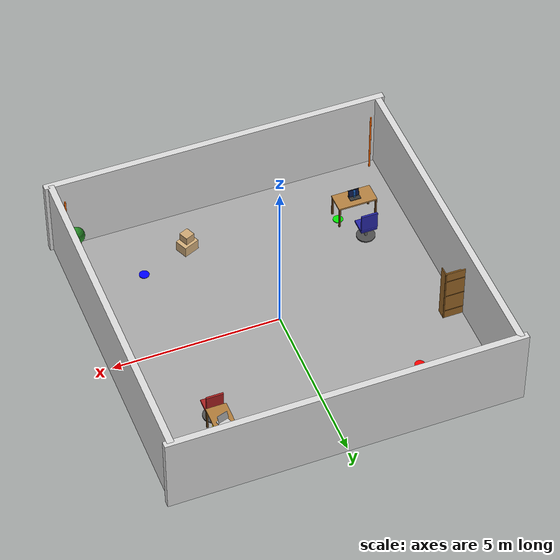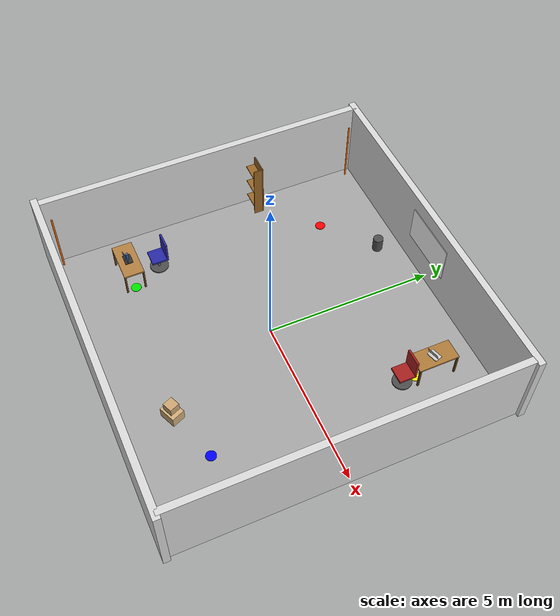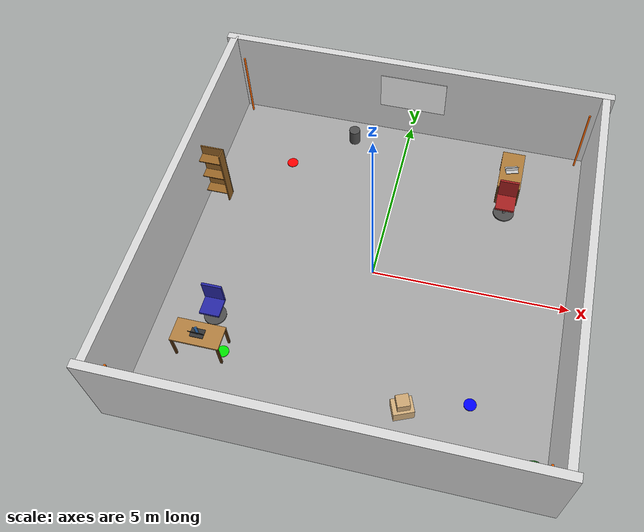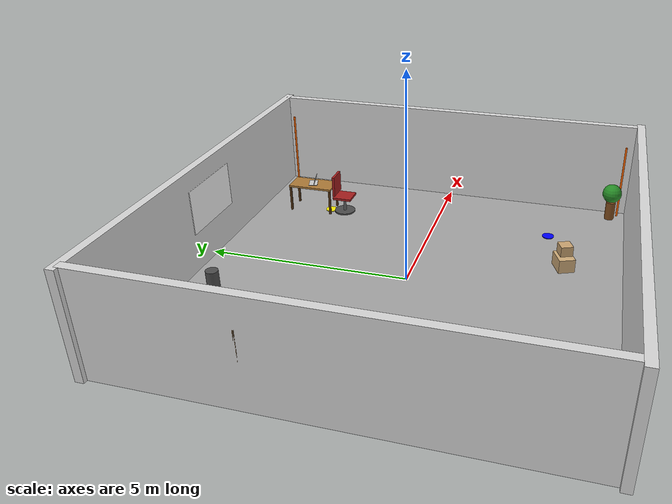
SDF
<?xml version="1.0" ?>
<sdf version="1.6">
  <world name="testing_world">

    <plugin filename="libignition-gazebo-physics-system.so" name="ignition::gazebo::systems::Physics"/>
    <plugin filename="libignition-gazebo-user-commands-system.so" name="ignition::gazebo::systems::UserCommands"/>
    <plugin filename="libignition-gazebo-scene-broadcaster-system.so" name="ignition::gazebo::systems::SceneBroadcaster"/>
    <plugin filename="libignition-gazebo-imu-system.so" name="ignition::gazebo::systems::Imu"/>
    <plugin filename="libignition-gazebo-sensors-system.so" name="ignition::gazebo::systems::Sensors">
      <render_engine>ogre</render_engine>
    </plugin>

    <physics name="default_physics" default="true" type="ode">
      <max_step_size>0.004</max_step_size>
      <real_time_factor>1</real_time_factor>
      <real_time_update_rate>250</real_time_update_rate>
      <gravity>0 0 -9.81</gravity>
    </physics>

    <light name="sun" type="directional">
      <cast_shadows>true</cast_shadows>
      <pose>0 0 20 0 -0.5 0.7</pose>
      <diffuse>1.0 1.0 1.0 1</diffuse>
      <specular>0.3 0.3 0.3 1</specular>
      <direction>-0.5 0.2 -0.9</direction>
    </light>

    <light name="ambient_fill" type="directional">
      <cast_shadows>false</cast_shadows>
      <pose>0 0 10 0 0 0</pose>
      <diffuse>0.4 0.4 0.45 1</diffuse>
      <specular>0.05 0.05 0.05 1</specular>
      <direction>0 0 -1</direction>
    </light>

    <model name="floor">
      <static>true</static>
      <pose>0 0 0 0 0 0</pose>
      <link name="link">
        <collision name="col"><geometry><box><size>10 10 0.02</size></box></geometry></collision>
        <visual name="vis">
          <geometry><box><size>10 10 0.02</size></box></geometry>
          <material><ambient>0.55 0.55 0.55 1</ambient><diffuse>0.65 0.65 0.65 1</diffuse></material>
        </visual>
      </link>
    </model>

    <model name="wall_north">
      <static>true</static>
      <pose>0 5.0 1.25 0 0 0</pose>
      <link name="link">
        <collision name="col"><geometry><box><size>10.4 0.2 2.5</size></box></geometry></collision>
        <visual name="vis">
          <geometry><box><size>10.4 0.2 2.5</size></box></geometry>
          <material><ambient>0.8 0.8 0.8 1</ambient><diffuse>0.85 0.85 0.85 1</diffuse></material>
        </visual>
      </link>
    </model>

    <model name="wall_south">
      <static>true</static>
      <pose>0 -5.0 1.25 0 0 0</pose>
      <link name="link">
        <collision name="col"><geometry><box><size>10.4 0.2 2.5</size></box></geometry></collision>
        <visual name="vis">
          <geometry><box><size>10.4 0.2 2.5</size></box></geometry>
          <material><ambient>0.8 0.8 0.8 1</ambient><diffuse>0.85 0.85 0.85 1</diffuse></material>
        </visual>
      </link>
    </model>

    <model name="wall_east">
      <static>true</static>
      <pose>5.0 0 1.25 0 0 0</pose>
      <link name="link">
        <collision name="col"><geometry><box><size>0.2 10.0 2.5</size></box></geometry></collision>
        <visual name="vis">
          <geometry><box><size>0.2 10.0 2.5</size></box></geometry>
          <material><ambient>0.8 0.8 0.8 1</ambient><diffuse>0.85 0.85 0.85 1</diffuse></material>
        </visual>
      </link>
    </model>

    <model name="wall_west">
      <static>true</static>
      <pose>-5.0 0 1.25 0 0 0</pose>
      <link name="link">
        <collision name="col"><geometry><box><size>0.2 10.0 2.5</size></box></geometry></collision>
        <visual name="vis">
          <geometry><box><size>0.2 10.0 2.5</size></box></geometry>
          <material><ambient>0.8 0.8 0.8 1</ambient><diffuse>0.85 0.85 0.85 1</diffuse></material>
        </visual>
      </link>
    </model>

    <model name="desk1_top">
      <static>true</static>
      <pose>-3.5 -3.0 0.725 0 0 0</pose>
      <link name="link">
        <collision name="col"><geometry><box><size>1.2 0.6 0.05</size></box></geometry></collision>
        <visual name="vis">
          <geometry><box><size>1.2 0.6 0.05</size></box></geometry>
          <material><ambient>0.6 0.4 0.2 1</ambient><diffuse>0.7 0.5 0.25 1</diffuse></material>
        </visual>
      </link>
    </model>

    <model name="desk1_leg_fl">
      <static>true</static>
      <pose>-4.065 -3.275 0.35 0 0 0</pose>
      <link name="link">
        <collision name="col"><geometry><box><size>0.05 0.05 0.70</size></box></geometry></collision>
        <visual name="vis">
          <geometry><box><size>0.05 0.05 0.70</size></box></geometry>
          <material><ambient>0.4 0.25 0.1 1</ambient><diffuse>0.4 0.25 0.1 1</diffuse></material>
        </visual>
      </link>
    </model>

    <model name="desk1_leg_fr">
      <static>true</static>
      <pose>-2.935 -3.275 0.35 0 0 0</pose>
      <link name="link">
        <collision name="col"><geometry><box><size>0.05 0.05 0.70</size></box></geometry></collision>
        <visual name="vis">
          <geometry><box><size>0.05 0.05 0.70</size></box></geometry>
          <material><ambient>0.4 0.25 0.1 1</ambient><diffuse>0.4 0.25 0.1 1</diffuse></material>
        </visual>
      </link>
    </model>

    <model name="desk1_leg_bl">
      <static>true</static>
      <pose>-4.065 -2.725 0.35 0 0 0</pose>
      <link name="link">
        <collision name="col"><geometry><box><size>0.05 0.05 0.70</size></box></geometry></collision>
        <visual name="vis">
          <geometry><box><size>0.05 0.05 0.70</size></box></geometry>
          <material><ambient>0.4 0.25 0.1 1</ambient><diffuse>0.4 0.25 0.1 1</diffuse></material>
        </visual>
      </link>
    </model>

    <model name="desk1_leg_br">
      <static>true</static>
      <pose>-2.935 -2.725 0.35 0 0 0</pose>
      <link name="link">
        <collision name="col"><geometry><box><size>0.05 0.05 0.70</size></box></geometry></collision>
        <visual name="vis">
          <geometry><box><size>0.05 0.05 0.70</size></box></geometry>
          <material><ambient>0.4 0.25 0.1 1</ambient><diffuse>0.4 0.25 0.1 1</diffuse></material>
        </visual>
      </link>
    </model>

    <model name="laptop1_base">
      <static>true</static>
      <pose>-3.5 -3.0 0.76 0 0 0</pose>
      <link name="link">
        <collision name="col"><geometry><box><size>0.33 0.23 0.02</size></box></geometry></collision>
        <visual name="vis">
          <geometry><box><size>0.33 0.23 0.02</size></box></geometry>
          <material><ambient>0.15 0.15 0.15 1</ambient><diffuse>0.2 0.2 0.2 1</diffuse></material>
        </visual>
      </link>
    </model>

    <model name="laptop1_lid">
      <static>true</static>
      <pose>-3.5 -3.06 0.88 -1.22 0 0</pose>
      <link name="link">
        <collision name="col"><geometry><box><size>0.33 0.22 0.01</size></box></geometry></collision>
        <visual name="vis">
          <geometry><box><size>0.33 0.22 0.01</size></box></geometry>
          <material><ambient>0.15 0.15 0.15 1</ambient><diffuse>0.2 0.2 0.2 1</diffuse></material>
        </visual>
      </link>
    </model>

    <model name="laptop1_screen">
      <static>true</static>
      <pose>-3.5 -3.055 0.878 -1.22 0 0</pose>
      <link name="link">
        <collision name="col"><geometry><box><size>0.30 0.19 0.005</size></box></geometry></collision>
        <visual name="vis">
          <geometry><box><size>0.30 0.19 0.005</size></box></geometry>
          <material><ambient>0.05 0.1 0.25 1</ambient><diffuse>0.08 0.15 0.4 1</diffuse></material>
        </visual>
      </link>
    </model>

    <model name="chair1_seat">
      <static>true</static>
      <pose>-3.5 -2.1 0.47 0 0 0</pose>
      <link name="link">
        <collision name="col"><geometry><box><size>0.50 0.50 0.06</size></box></geometry></collision>
        <visual name="vis">
          <geometry><box><size>0.50 0.50 0.06</size></box></geometry>
          <material><ambient>0.1 0.1 0.5 1</ambient><diffuse>0.15 0.15 0.65 1</diffuse></material>
        </visual>
      </link>
    </model>

    <model name="chair1_back">
      <static>true</static>
      <pose>-3.5 -1.88 0.82 0 0 0</pose>
      <link name="link">
        <collision name="col"><geometry><box><size>0.50 0.06 0.55</size></box></geometry></collision>
        <visual name="vis">
          <geometry><box><size>0.50 0.06 0.55</size></box></geometry>
          <material><ambient>0.1 0.1 0.5 1</ambient><diffuse>0.15 0.15 0.65 1</diffuse></material>
        </visual>
      </link>
    </model>

    <model name="chair1_column">
      <static>true</static>
      <pose>-3.5 -2.1 0.22 0 0 0</pose>
      <link name="link">
        <collision name="col"><geometry><cylinder><radius>0.04</radius><length>0.44</length></cylinder></geometry></collision>
        <visual name="vis">
          <geometry><cylinder><radius>0.04</radius><length>0.44</length></cylinder></geometry>
          <material><ambient>0.3 0.3 0.3 1</ambient><diffuse>0.4 0.4 0.4 1</diffuse></material>
        </visual>
      </link>
    </model>

    <model name="chair1_base">
      <static>true</static>
      <pose>-3.5 -2.1 0.04 0 0 0</pose>
      <link name="link">
        <collision name="col"><geometry><cylinder><radius>0.28</radius><length>0.04</length></cylinder></geometry></collision>
        <visual name="vis">
          <geometry><cylinder><radius>0.28</radius><length>0.04</length></cylinder></geometry>
          <material><ambient>0.2 0.2 0.2 1</ambient><diffuse>0.3 0.3 0.3 1</diffuse></material>
        </visual>
      </link>
    </model>

    <model name="desk2_top">
      <static>true</static>
      <pose>3.0 3.5 0.725 0 0 1.5708</pose>
      <link name="link">
        <collision name="col"><geometry><box><size>1.2 0.6 0.05</size></box></geometry></collision>
        <visual name="vis">
          <geometry><box><size>1.2 0.6 0.05</size></box></geometry>
          <material><ambient>0.55 0.38 0.18 1</ambient><diffuse>0.68 0.48 0.22 1</diffuse></material>
        </visual>
      </link>
    </model>

    <model name="desk2_leg_fl">
      <static>true</static>
      <pose>3.275 4.065 0.35 0 0 0</pose>
      <link name="link">
        <collision name="col"><geometry><box><size>0.05 0.05 0.70</size></box></geometry></collision>
        <visual name="vis">
          <geometry><box><size>0.05 0.05 0.70</size></box></geometry>
          <material><ambient>0.35 0.22 0.08 1</ambient><diffuse>0.35 0.22 0.08 1</diffuse></material>
        </visual>
      </link>
    </model>

    <model name="desk2_leg_fr">
      <static>true</static>
      <pose>3.275 2.935 0.35 0 0 0</pose>
      <link name="link">
        <collision name="col"><geometry><box><size>0.05 0.05 0.70</size></box></geometry></collision>
        <visual name="vis">
          <geometry><box><size>0.05 0.05 0.70</size></box></geometry>
          <material><ambient>0.35 0.22 0.08 1</ambient><diffuse>0.35 0.22 0.08 1</diffuse></material>
        </visual>
      </link>
    </model>

    <model name="desk2_leg_bl">
      <static>true</static>
      <pose>2.725 4.065 0.35 0 0 0</pose>
      <link name="link">
        <collision name="col"><geometry><box><size>0.05 0.05 0.70</size></box></geometry></collision>
        <visual name="vis">
          <geometry><box><size>0.05 0.05 0.70</size></box></geometry>
          <material><ambient>0.35 0.22 0.08 1</ambient><diffuse>0.35 0.22 0.08 1</diffuse></material>
        </visual>
      </link>
    </model>

    <model name="desk2_leg_br">
      <static>true</static>
      <pose>2.725 2.935 0.35 0 0 0</pose>
      <link name="link">
        <collision name="col"><geometry><box><size>0.05 0.05 0.70</size></box></geometry></collision>
        <visual name="vis">
          <geometry><box><size>0.05 0.05 0.70</size></box></geometry>
          <material><ambient>0.35 0.22 0.08 1</ambient><diffuse>0.35 0.22 0.08 1</diffuse></material>
        </visual>
      </link>
    </model>

    <model name="laptop2_base">
      <static>true</static>
      <pose>3.0 3.5 0.76 0 0 0.3</pose>
      <link name="link">
        <collision name="col"><geometry><box><size>0.33 0.23 0.02</size></box></geometry></collision>
        <visual name="vis">
          <geometry><box><size>0.33 0.23 0.02</size></box></geometry>
          <material><ambient>0.7 0.7 0.7 1</ambient><diffuse>0.8 0.8 0.8 1</diffuse></material>
        </visual>
      </link>
    </model>

    <model name="laptop2_lid">
      <static>true</static>
      <pose>3.0 3.44 0.88 -1.22 0 0.3</pose>
      <link name="link">
        <collision name="col"><geometry><box><size>0.33 0.22 0.01</size></box></geometry></collision>
        <visual name="vis">
          <geometry><box><size>0.33 0.22 0.01</size></box></geometry>
          <material><ambient>0.7 0.7 0.7 1</ambient><diffuse>0.8 0.8 0.8 1</diffuse></material>
        </visual>
      </link>
    </model>

    <model name="chair2_seat">
      <static>true</static>
      <pose>3.0 2.6 0.47 0 0 3.14159</pose>
      <link name="link">
        <collision name="col"><geometry><box><size>0.50 0.50 0.06</size></box></geometry></collision>
        <visual name="vis">
          <geometry><box><size>0.50 0.50 0.06</size></box></geometry>
          <material><ambient>0.5 0.1 0.1 1</ambient><diffuse>0.65 0.12 0.12 1</diffuse></material>
        </visual>
      </link>
    </model>

    <model name="chair2_back">
      <static>true</static>
      <pose>3.0 2.82 0.82 0 0 3.14159</pose>
      <link name="link">
        <collision name="col"><geometry><box><size>0.50 0.06 0.55</size></box></geometry></collision>
        <visual name="vis">
          <geometry><box><size>0.50 0.06 0.55</size></box></geometry>
          <material><ambient>0.5 0.1 0.1 1</ambient><diffuse>0.65 0.12 0.12 1</diffuse></material>
        </visual>
      </link>
    </model>

    <model name="chair2_column">
      <static>true</static>
      <pose>3.0 2.6 0.22 0 0 0</pose>
      <link name="link">
        <collision name="col"><geometry><cylinder><radius>0.04</radius><length>0.44</length></cylinder></geometry></collision>
        <visual name="vis">
          <geometry><cylinder><radius>0.04</radius><length>0.44</length></cylinder></geometry>
          <material><ambient>0.3 0.3 0.3 1</ambient><diffuse>0.4 0.4 0.4 1</diffuse></material>
        </visual>
      </link>
    </model>

    <model name="chair2_base">
      <static>true</static>
      <pose>3.0 2.6 0.04 0 0 0</pose>
      <link name="link">
        <collision name="col"><geometry><cylinder><radius>0.28</radius><length>0.04</length></cylinder></geometry></collision>
        <visual name="vis">
          <geometry><cylinder><radius>0.28</radius><length>0.04</length></cylinder></geometry>
          <material><ambient>0.2 0.2 0.2 1</ambient><diffuse>0.3 0.3 0.3 1</diffuse></material>
        </visual>
      </link>
    </model>

    <model name="bookshelf_back">
      <static>true</static>
      <pose>-4.7 1.63 0.9 0 0 0</pose>
      <link name="link">
        <collision name="col"><geometry><box><size>0.80 0.03 1.80</size></box></geometry></collision>
        <visual name="vis">
          <geometry><box><size>0.80 0.03 1.80</size></box></geometry>
          <material><ambient>0.5 0.32 0.12 1</ambient><diffuse>0.6 0.4 0.15 1</diffuse></material>
        </visual>
      </link>
    </model>

    <model name="bookshelf_side_l">
      <static>true</static>
      <pose>-5.085 1.5 0.9 0 0 0</pose>
      <link name="link">
        <collision name="col"><geometry><box><size>0.03 0.30 1.80</size></box></geometry></collision>
        <visual name="vis">
          <geometry><box><size>0.03 0.30 1.80</size></box></geometry>
          <material><ambient>0.5 0.32 0.12 1</ambient><diffuse>0.6 0.4 0.15 1</diffuse></material>
        </visual>
      </link>
    </model>

    <model name="bookshelf_side_r">
      <static>true</static>
      <pose>-4.315 1.5 0.9 0 0 0</pose>
      <link name="link">
        <collision name="col"><geometry><box><size>0.03 0.30 1.80</size></box></geometry></collision>
        <visual name="vis">
          <geometry><box><size>0.03 0.30 1.80</size></box></geometry>
          <material><ambient>0.5 0.32 0.12 1</ambient><diffuse>0.6 0.4 0.15 1</diffuse></material>
        </visual>
      </link>
    </model>

    <model name="bookshelf_shelf_1">
      <static>true</static>
      <pose>-4.7 1.5 0.3 0 0 0</pose>
      <link name="link">
        <collision name="col"><geometry><box><size>0.74 0.30 0.025</size></box></geometry></collision>
        <visual name="vis">
          <geometry><box><size>0.74 0.30 0.025</size></box></geometry>
          <material><ambient>0.5 0.32 0.12 1</ambient><diffuse>0.6 0.4 0.15 1</diffuse></material>
        </visual>
      </link>
    </model>

    <model name="bookshelf_shelf_2">
      <static>true</static>
      <pose>-4.7 1.5 0.9 0 0 0</pose>
      <link name="link">
        <collision name="col"><geometry><box><size>0.74 0.30 0.025</size></box></geometry></collision>
        <visual name="vis">
          <geometry><box><size>0.74 0.30 0.025</size></box></geometry>
          <material><ambient>0.5 0.32 0.12 1</ambient><diffuse>0.6 0.4 0.15 1</diffuse></material>
        </visual>
      </link>
    </model>

    <model name="bookshelf_shelf_3">
      <static>true</static>
      <pose>-4.7 1.5 1.5 0 0 0</pose>
      <link name="link">
        <collision name="col"><geometry><box><size>0.74 0.30 0.025</size></box></geometry></collision>
        <visual name="vis">
          <geometry><box><size>0.74 0.30 0.025</size></box></geometry>
          <material><ambient>0.5 0.32 0.12 1</ambient><diffuse>0.6 0.4 0.15 1</diffuse></material>
        </visual>
      </link>
    </model>

    <model name="box_a">
      <static>true</static>
      <pose>1.5 -3.5 0.175 0 0 0.4</pose>
      <link name="link">
        <collision name="col"><geometry><box><size>0.50 0.40 0.35</size></box></geometry></collision>
        <visual name="vis">
          <geometry><box><size>0.50 0.40 0.35</size></box></geometry>
          <material><ambient>0.75 0.62 0.42 1</ambient><diffuse>0.82 0.68 0.48 1</diffuse></material>
        </visual>
        <inertial><mass>5</mass><inertia><ixx>0.05</ixx><iyy>0.05</iyy><izz>0.05</izz></inertia></inertial>
      </link>
    </model>

    <model name="box_b">
      <static>true</static>
      <pose>1.5 -3.5 0.525 0 0 0.4</pose>
      <link name="link">
        <collision name="col"><geometry><box><size>0.30 0.30 0.25</size></box></geometry></collision>
        <visual name="vis">
          <geometry><box><size>0.30 0.30 0.25</size></box></geometry>
          <material><ambient>0.72 0.58 0.38 1</ambient><diffuse>0.80 0.65 0.45 1</diffuse></material>
        </visual>
        <inertial><mass>2</mass><inertia><ixx>0.02</ixx><iyy>0.02</iyy><izz>0.02</izz></inertia></inertial>
      </link>
    </model>

    <model name="trash_can">
      <static>true</static>
      <pose>-1.5 4.2 0.225 0 0 0</pose>
      <link name="link">
        <collision name="col"><geometry><cylinder><radius>0.15</radius><length>0.45</length></cylinder></geometry></collision>
        <visual name="vis">
          <geometry><cylinder><radius>0.15</radius><length>0.45</length></cylinder></geometry>
          <material><ambient>0.2 0.2 0.2 1</ambient><diffuse>0.3 0.3 0.3 1</diffuse></material>
        </visual>
        <inertial><mass>2</mass><inertia><ixx>0.02</ixx><iyy>0.02</iyy><izz>0.02</izz></inertia></inertial>
      </link>
    </model>

    <model name="water_bottle">
      <static>false</static>
      <pose>-3.5 -3.0 0.895 0 0 0</pose>
      <link name="link">
        <collision name="col"><geometry><cylinder><radius>0.035</radius><length>0.25</length></cylinder></geometry></collision>
        <visual name="vis">
          <geometry><cylinder><radius>0.035</radius><length>0.25</length></cylinder></geometry>
          <material><ambient>0.1 0.4 0.8 0.7</ambient><diffuse>0.15 0.5 0.9 0.7</diffuse></material>
        </visual>
        <inertial><mass>0.5</mass><inertia><ixx>0.005</ixx><iyy>0.005</iyy><izz>0.005</izz></inertia></inertial>
      </link>
    </model>

    <model name="plant_pot_body">
      <static>true</static>
      <pose>4.5 -4.5 0.25 0 0 0</pose>
      <link name="link">
        <collision name="col"><geometry><cylinder><radius>0.125</radius><length>0.5</length></cylinder></geometry></collision>
        <visual name="vis">
          <geometry><cylinder><radius>0.125</radius><length>0.5</length></cylinder></geometry>
          <material><ambient>0.4 0.25 0.1 1</ambient><diffuse>0.5 0.3 0.12 1</diffuse></material>
        </visual>
      </link>
    </model>

    <model name="plant_pot_foliage">
      <static>true</static>
      <pose>4.5 -4.5 0.75 0 0 0</pose>
      <link name="link">
        <collision name="col"><geometry><sphere><radius>0.25</radius></sphere></geometry></collision>
        <visual name="vis">
          <geometry><sphere><radius>0.25</radius></sphere></geometry>
          <material><ambient>0.1 0.4 0.1 1</ambient><diffuse>0.15 0.55 0.15 1</diffuse></material>
        </visual>
      </link>
    </model>

    <model name="whiteboard">
      <static>true</static>
      <pose>0 4.88 1.5 0 0 0</pose>
      <link name="link">
        <collision name="col"><geometry><box><size>1.80 0.02 1.10</size></box></geometry></collision>
        <visual name="vis">
          <geometry><box><size>1.80 0.02 1.10</size></box></geometry>
          <material><ambient>0.95 0.95 0.95 1</ambient><diffuse>0.98 0.98 0.98 1</diffuse></material>
        </visual>
      </link>
    </model>

    <model name="wp_A">
      <static>true</static>
      <pose>-3.0 -3.0 0.015 0 0 0</pose>
      <link name="link">
        <collision name="col"><geometry><cylinder><radius>0.15</radius><length>0.03</length></cylinder></geometry></collision>
        <visual name="vis">
          <geometry><cylinder><radius>0.15</radius><length>0.03</length></cylinder></geometry>
          <material><ambient>0 0.7 0 1</ambient><diffuse>0 0.9 0 1</diffuse></material>
        </visual>
      </link>
    </model>

    <model name="wp_B">
      <static>true</static>
      <pose>3.0 -3.0 0.015 0 0 0</pose>
      <link name="link">
        <collision name="col"><geometry><cylinder><radius>0.15</radius><length>0.03</length></cylinder></geometry></collision>
        <visual name="vis">
          <geometry><cylinder><radius>0.15</radius><length>0.03</length></cylinder></geometry>
          <material><ambient>0 0 0.8 1</ambient><diffuse>0 0 1.0 1</diffuse></material>
        </visual>
      </link>
    </model>

    <model name="wp_C">
      <static>true</static>
      <pose>3.0 3.0 0.015 0 0 0</pose>
      <link name="link">
        <collision name="col"><geometry><cylinder><radius>0.15</radius><length>0.03</length></cylinder></geometry></collision>
        <visual name="vis">
          <geometry><cylinder><radius>0.15</radius><length>0.03</length></cylinder></geometry>
          <material><ambient>0.9 0.8 0 1</ambient><diffuse>1 0.95 0 1</diffuse></material>
        </visual>
      </link>
    </model>

    <model name="wp_D">
      <static>true</static>
      <pose>-3.0 3.0 0.015 0 0 0</pose>
      <link name="link">
        <collision name="col"><geometry><cylinder><radius>0.15</radius><length>0.03</length></cylinder></geometry></collision>
        <visual name="vis">
          <geometry><cylinder><radius>0.15</radius><length>0.03</length></cylinder></geometry>
          <material><ambient>0.85 0 0 1</ambient><diffuse>1 0 0 1</diffuse></material>
        </visual>
      </link>
    </model>

    <model name="ref_pole_NE">
      <static>true</static>
      <pose>4.7 4.7 1.0 0 0 0</pose>
      <link name="link">
        <collision name="col"><geometry><cylinder><radius>0.025</radius><length>2.0</length></cylinder></geometry></collision>
        <visual name="vis">
          <geometry><cylinder><radius>0.025</radius><length>2.0</length></cylinder></geometry>
          <material><ambient>1 0.3 0 1</ambient><diffuse>1 0.4 0 1</diffuse></material>
        </visual>
      </link>
    </model>

    <model name="ref_pole_NW">
      <static>true</static>
      <pose>-4.7 4.7 1.0 0 0 0</pose>
      <link name="link">
        <collision name="col"><geometry><cylinder><radius>0.025</radius><length>2.0</length></cylinder></geometry></collision>
        <visual name="vis">
          <geometry><cylinder><radius>0.025</radius><length>2.0</length></cylinder></geometry>
          <material><ambient>1 0.3 0 1</ambient><diffuse>1 0.4 0 1</diffuse></material>
        </visual>
      </link>
    </model>

    <model name="ref_pole_SE">
      <static>true</static>
      <pose>4.7 -4.7 1.0 0 0 0</pose>
      <link name="link">
        <collision name="col"><geometry><cylinder><radius>0.025</radius><length>2.0</length></cylinder></geometry></collision>
        <visual name="vis">
          <geometry><cylinder><radius>0.025</radius><length>2.0</length></cylinder></geometry>
          <material><ambient>1 0.3 0 1</ambient><diffuse>1 0.4 0 1</diffuse></material>
        </visual>
      </link>
    </model>

    <model name="ref_pole_SW">
      <static>true</static>
      <pose>-4.7 -4.7 1.0 0 0 0</pose>
      <link name="link">
        <collision name="col"><geometry><cylinder><radius>0.025</radius><length>2.0</length></cylinder></geometry></collision>
        <visual name="vis">
          <geometry><cylinder><radius>0.025</radius><length>2.0</length></cylinder></geometry>
          <material><ambient>1 0.3 0 1</ambient><diffuse>1 0.4 0 1</diffuse></material>
        </visual>
      </link>
    </model>

  </world>
</sdf>
